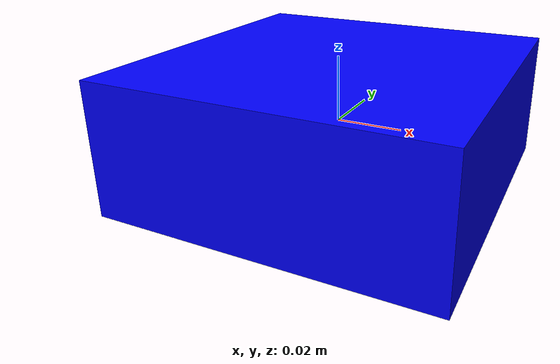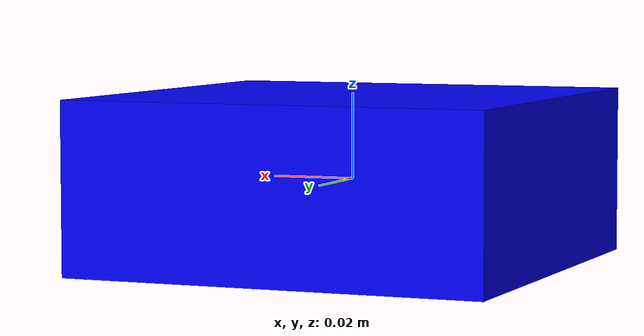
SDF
<?xml version="1.0" ?>
<sdf version="1.8">
  <model name="dron_camara">
    <static>true</static>
    <link name="base_link">

      <visual name="visual">
        <geometry>
          <box><size>0.1 0.1 0.04</size></box>
        </geometry>
        <material>
          <ambient>0 0 1 1</ambient>
          <diffuse>0 0 1 1</diffuse>
        </material>
      </visual>

      <sensor name="camera_uav" type="camera">
        <pose>0 0 -0.05 0 1.5707 0</pose>
        <update_rate>30</update_rate>
        <visualize>true</visualize>
        <topic>uav/camera/image</topic>
        <camera>
          <horizontal_fov>1.4416</horizontal_fov>
          <image>
            <width>1280</width>
            <height>720</height>
            <format>R8G8B8</format>
          </image>
          <clip>
            <near>0.1</near>
            <far>100</far>
          </clip>
          <distortion>
            <k1>-0.05</k1>      <k2>0.01</k2>
            <k3>0.0</k3>
            <p1>0.0</p1>       <p2>0.0</p2>
            <center>0.5 0.5</center>
          </distortion>
          <noise>
            <type>gaussian</type>
            <mean>0.0</mean>
            <stddev>0.01</stddev>
          </noise>
        </camera>
      </sensor>

    </link>
  </model>
</sdf>
